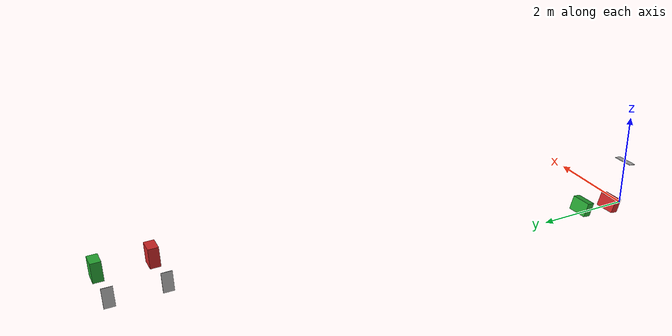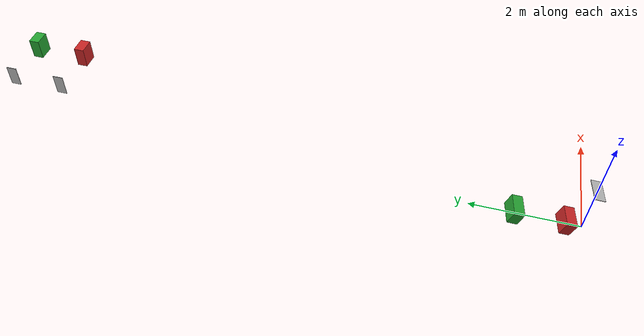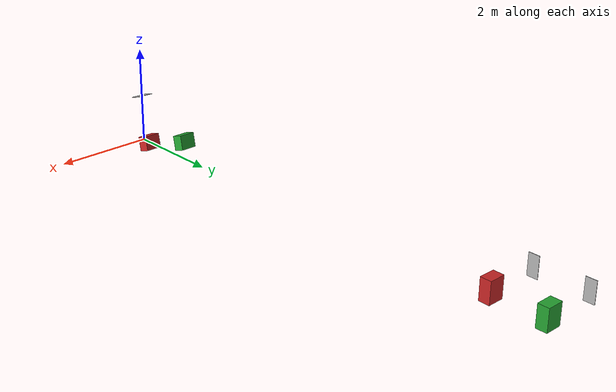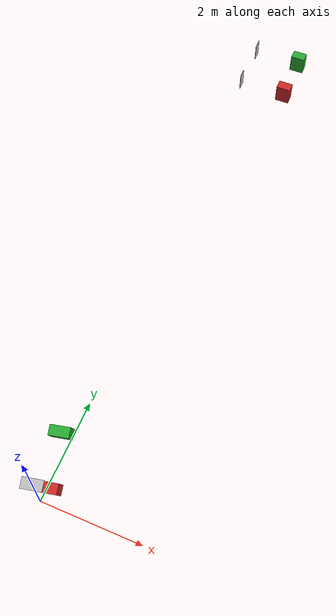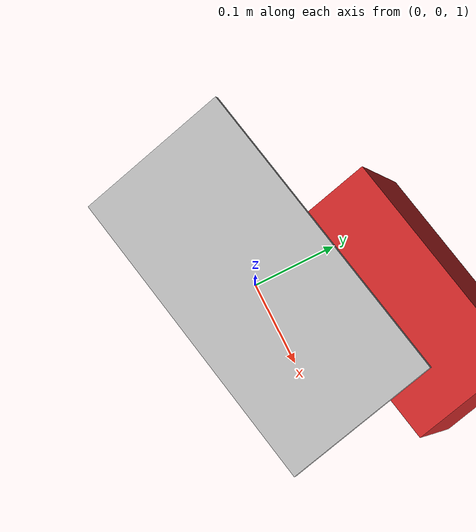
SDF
<?xml version="1.0" ?>
<sdf version="1.3">
  <world name="default">
    <scene>
      <background>0 0 0 0</background>
      <ambient>1 1 1 1</ambient>
    </scene>

    <!-- unrotated objects for ground truth -->
    <model name="cam_x_rot_test_unrotated_objects_1">
      <pose>1 10 1 0 0 0</pose>
      <static>1</static>
      <link name="cam_x_rot_test_1_link_1">
        <pose>0 0 0 0 0 0</pose>
        <visual name="cam_x_rot_test_1_vis">
          <geometry>
            <box>
              <size>0.3 0.2 0.4</size>
            </box>
          </geometry>
          <material>
            <script>
              <name>Gazebo/Red</name>
              <uri>__default__</uri>
            </script>
          </material>
        </visual>
      </link>
      <link name="cam_x_rot_test_1_link_2">
        <pose>0 1 0 0 0 0</pose>
        <visual name="cam_x_rot_test_1_vis">
          <geometry>
            <box>
              <size>0.3 0.2 0.4</size>
            </box>
          </geometry>
          <material>
            <script>
              <name>Gazebo/Green</name>
              <uri>__default__</uri>
            </script>
          </material>
        </visual>
      </link>
    </model>
    <!-- unrotated cameras for red block ground truth -->
    <model name="cam_x_rot_test_unrotated_cameras_1">
      <static>1</static>
      <pose>0 10 1 0 0 0</pose>
      <link name="cam_x_rot_test_2_link">
        <visual name="cam_x_rot_test_1_vis">
          <pose>0 0 0 0 0 0</pose>
          <geometry>
            <box>
              <size>0.01 0.2 0.4</size>
            </box>
          </geometry>
        </visual>
        <sensor name="multicamera_sensor_unrotated" type="multicamera">
          <always_on>1</always_on>
          <update_rate>15</update_rate>
          <pose>0 0 0 0 0 0</pose>
          <camera name="left">
            <!-- should be in front of green block -->
            <pose>0 1.0 0 0 0 0</pose>
            <horizontal_fov>1.3962634</horizontal_fov>
            <image>
              <width>1024</width>
              <height>544</height>
              <format>R8G8B8</format>
            </image>
            <clip>
              <near>0.02</near>
              <far>100</far>
            </clip>
          </camera>
          <camera name="right">
            <!-- should be in front of red block -->
            <pose>0 0 0 0 0 0</pose>
            <horizontal_fov>1.3962634</horizontal_fov>
            <image>
              <width>1024</width>
              <height>544</height>
              <format>R8G8B8</format>
            </image>
            <clip>
              <near>0.02</near>
              <far>100</far>
            </clip>
          </camera>
        </sensor>
      </link>
    </model>
    <!-- Unrotated but translated cameras for ground truth.
         Both cameras should see the green block.
         Use this camera for green block ground truth in testing.
    -->
    <model name="cam_x_rot_test_translated_camera_1">
      <static>1</static>
      <pose>0 11 1 0 0 0</pose>
      <link name="cam_x_rot_test_2_link">
        <visual name="cam_x_rot_test_1_vis">
          <pose>0 0 0 0 0 0</pose>
          <geometry>
            <box>
              <size>0.01 0.2 0.4</size>
            </box>
          </geometry>
        </visual>
        <sensor name="camera_sensor_translated" type="camera">
          <update_rate>15</update_rate>
          <pose>0 0 0 0 0 0</pose>
          <camera name="single_camera">
            <pose>0 0 0 0 0 0</pose>
            <horizontal_fov>1.3962634</horizontal_fov>
            <image>
              <width>1024</width>
              <height>544</height>
              <format>R8G8B8</format>
            </image>
            <clip>
              <near>0.02</near>
              <far>100</far>
            </clip>
          </camera>
        </sensor>
      </link>
    </model>

    <!-- set of rotated objects for testing camera sensor -->
    <model name="cam_x_rot_test_rotated_objects_1">
      <pose>0 0 1 1.2 1.3 1.4</pose>
      <static>1</static>
      <link name="cam_x_rot_test_1_link_1">
        <pose>1 0 0 0 0 0</pose>
        <visual name="cam_x_rot_test_1_vis">
          <geometry>
            <box>
              <size>0.3 0.2 0.4</size>
            </box>
          </geometry>
          <material>
            <script>
              <name>Gazebo/Red</name>
              <uri>__default__</uri>
            </script>
          </material>
        </visual>
      </link>
      <link name="cam_x_rot_test_1_link_2">
        <pose>1 1 0 0 0 0</pose>
        <visual name="cam_x_rot_test_1_vis">
          <geometry>
            <box>
              <size>0.3 0.2 0.4</size>
            </box>
          </geometry>
          <material>
            <script>
              <name>Gazebo/Green</name>
              <uri>__default__</uri>
            </script>
          </material>
        </visual>
      </link>
    </model>
    <!-- test rotation inside sensor tags -->
    <model name="cam_x_rot_test_rotated_cameras_1">
      <static>1</static>
      <pose>0 0 1 1.2 1.3 1.4</pose>
      <link name="cam_x_rot_test_2_link">
        <visual name="cam_x_rot_test_1_vis">
          <pose>0 0 0 0 0 0</pose>
          <geometry>
            <box>
              <size>0.01 0.2 0.4</size>
            </box>
          </geometry>
        </visual>
        <sensor name="multicamera_sensor_rotated1" type="multicamera">
          <update_rate>15</update_rate>
          <pose>0 0 0 0 0 0</pose>
          <camera name="left">
            <pose>0 1.0 0 0 0 0</pose>
            <horizontal_fov>1.3962634</horizontal_fov>
            <image>
              <width>1024</width>
              <height>544</height>
              <format>R8G8B8</format>
            </image>
            <clip>
              <near>0.02</near>
              <far>100</far>
            </clip>
          </camera>
          <camera name="right">
            <pose>0 0 0 0 0 0</pose>
            <horizontal_fov>1.3962634</horizontal_fov>
            <image>
              <width>1024</width>
              <height>544</height>
              <format>R8G8B8</format>
            </image>
            <clip>
              <near>0.02</near>
              <far>100</far>
            </clip>
          </camera>
        </sensor>
      </link>
    </model>
    <!-- test rotation inside camera tags -->
    <model name="cam_x_rot_test_rotated_cameras_2">
      <static>1</static>
      <pose>0 0 1 0 0 0</pose>
      <link name="cam_x_rot_test_2_link">
        <visual name="cam_x_rot_test_1_vis">
          <pose>0 0 0 1.2 1.3 1.4</pose>
          <geometry>
            <box>
              <size>0.01 0.2 0.4</size>
            </box>
          </geometry>
        </visual>
        <sensor name="multicamera_sensor_rotated2" type="multicamera">
          <update_rate>15</update_rate>
          <camera name="left">
            <!-- offset left cameras to put it in front of the green block -->
            <!-- the position offset is obtained by
                 ignition::math::Quaterniond a(1.2, 1.3, 1.4);
                 a.RotateVector(ignition::math::Vector3d(0, 1, 0)); -->
            <pose>-0.204442 0.946596 0.249319 1.2 1.3 1.4</pose>
            <horizontal_fov>1.3962634</horizontal_fov>
            <image>
              <width>1024</width>
              <height>544</height>
              <format>R8G8B8</format>
            </image>
            <clip>
              <near>0.02</near>
              <far>100</far>
            </clip>
          </camera>
          <camera name="right">
            <pose>0 0 0 1.2 1.3 1.4</pose>
            <horizontal_fov>1.3962634</horizontal_fov>
            <image>
              <width>1024</width>
              <height>544</height>
              <format>R8G8B8</format>
            </image>
            <clip>
              <near>0.02</near>
              <far>100</far>
            </clip>
          </camera>
        </sensor>
      </link>
    </model>
  </world>
</sdf>
